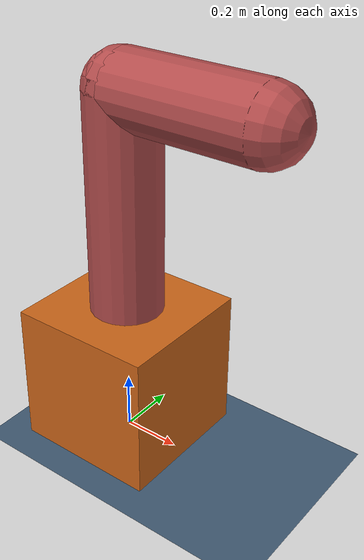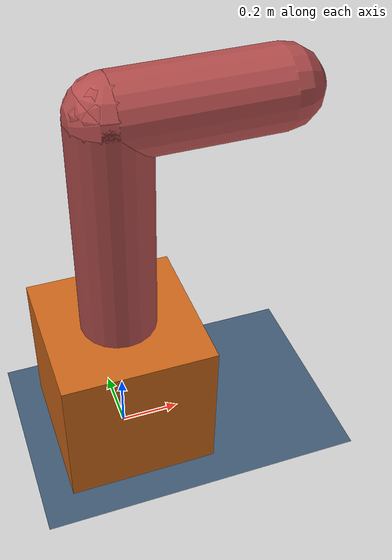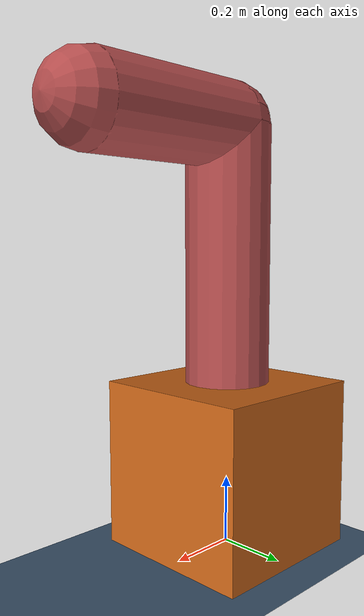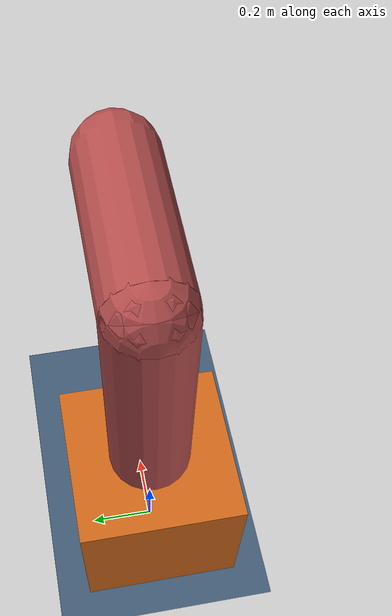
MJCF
<mujoco model="demo">
  <compiler angle="degree" coordinate="local"/>

  <!-- Gravity is enabled by default -->
  <option gravity="0 0 0" timestep="0.002">
    <flag warmstart="enable"/>
  </option>

  <!-- Visual settings -->
  <visual>
    <headlight ambient="0.5 0.5 0.5" diffuse="0.8 0.8 0.8"/>
    <rgba haze="0.15 0.25 0.35 1"/>  <!-- Haze for depth perception -->
    <global azimuth="10" elevation="-40"/>
  </visual>

  <!-- Assets: materials and textures -->
  <asset>
    <texture type="skybox" builtin="gradient" rgb1="0.3 0.5 0.7" rgb2="0 0 0" width="512" height="512"/>
    <texture name="grid" type="2d" builtin="checker" rgb1="0.2 0.3 0.4" rgb2="0.3 0.4 0.5" width="512" height="512"/>
    <material name="grid" texture="grid" texrepeat="1 1" texuniform="true" reflectance="0.2"/>
    <material name="robot" rgba="0.7 0.3 0.3 1"/>
    <material name="object" rgba="0.3 0.7 0.3 1"/>
  </asset>

  <!-- World body -->
  <worldbody>
    <!-- Floor -->
    <geom name="floor" type="plane" size="5 5 0.1" material="grid"/>

    <!-- Lighting -->
    <light pos="0 0 3" dir="0 0 -1" directional="true"/>

    <!-- Static objects -->

    <!-- Free-falling objects -->
    <!-- TODO -->

    <!-- Simple 2-link robot arm -->
    <!-- TODO -->

    <body name="robot_base" pos="0 0 0.25">
      <geom name="robot_base_geom" type="box" size="0.25 0.25 0.25" rgba="0.8 0.4 0.1 1" mass="0.2"/>
      <!--body centered at z = 0.25 with size 0.5x0.5x0.5-->

      <body name="link1" pos="0 0 0">
        <joint name="joint1" type="hinge" axis="0 0 1" range="-180 180" damping="0.1"/>
        <geom name="link1_geom" type="capsule" size="0.125" fromto="0 0 0 0 0 1" material="robot"/>

        <body name="link2" pos="0 0 1">
          <joint name="joint2" type="hinge" axis="0 1 0" range="-180 180" damping="0.1"/>
          <geom name="link2_geom" type="capsule" size="0.125" fromto="0 0 0 0.5 0 0" material="robot"/>
          <!--
            centered at 0 0 1 so that the point of origin is z=1.25 world coord
            fromto starts at 0 0 0 and 1 0 0 because it is respective to bodys oriign
          -->
        </body>
      </body>
    </body>

  </worldbody>

</mujoco>
